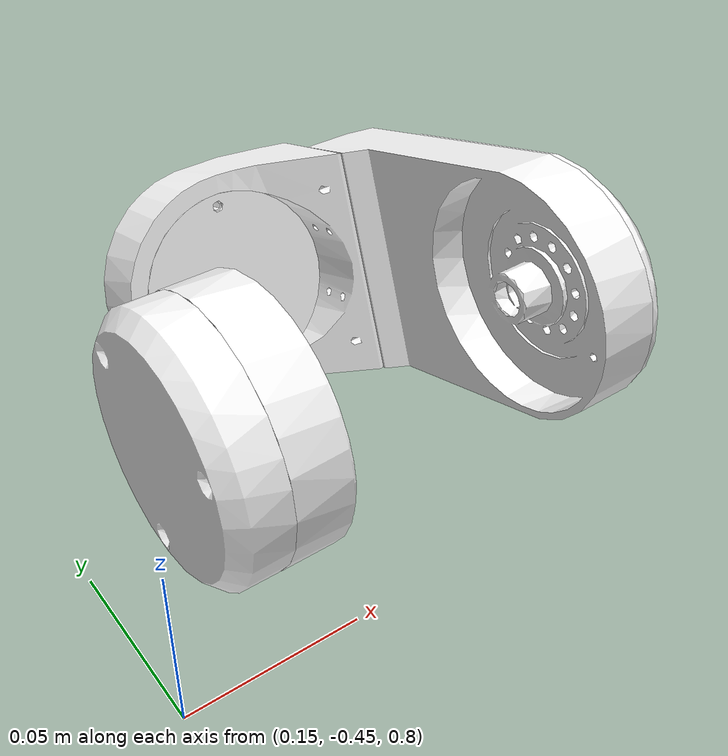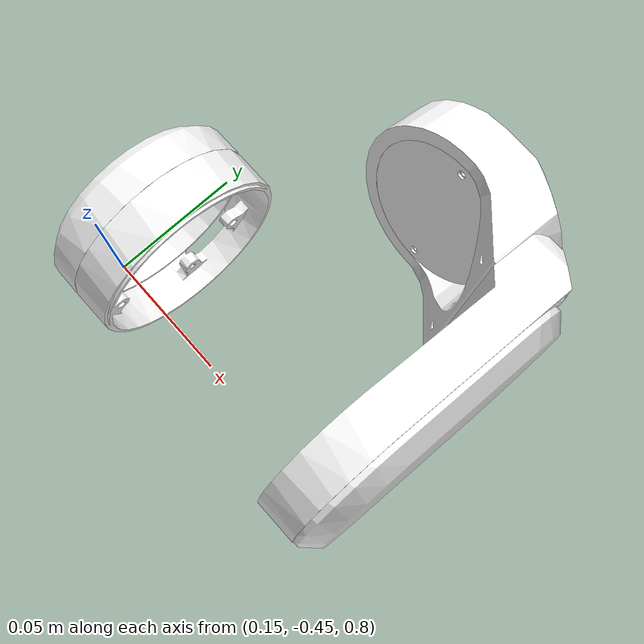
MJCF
<mujoco model="left_arm_5">
  <default>
    <default class="visual">
      <geom group="2" type="mesh" contype="0" conaffinity="0"/>
    </default>
    <default class="collision">
      <geom group="3" type="mesh"/>
    </default>
  </default>
  <asset>
    <material name="247,247,247_45.001" specular="1.0" shininess="0.2" rgba="0.968627 0.968627 0.968627 1.000000"/>
    <material name="247,247,247_46.001" specular="1.0" shininess="0.2" rgba="0.968627 0.968627 0.968627 1.000000"/>
    <material name="247,247,247_47.001" specular="1.0" shininess="0.2" rgba="0.968627 0.968627 0.968627 1.000000"/>
    <material name="247,247,247_48.001" specular="1.0" shininess="0.2" rgba="0.968627 0.968627 0.968627 1.000000"/>
    <material name="247,247,247_49.001" specular="1.0" shininess="0.2" rgba="0.968627 0.968627 0.968627 1.000000"/>
    <material name="247,247,247_50.001" specular="1.0" shininess="0.2" rgba="0.968627 0.968627 0.968627 1.000000"/>
    <mesh file="left_arm_5_0.obj"/>
    <mesh file="left_arm_5_1.obj"/>
    <mesh file="left_arm_5_2.obj"/>
    <mesh file="left_arm_5_3.obj"/>
    <mesh file="left_arm_5_4.obj"/>
    <mesh file="left_arm_5_5.obj"/>
  </asset>
  <worldbody>
    <body name="left_arm_5">
      <geom mesh="left_arm_5_0" material="247,247,247_50.001" class="visual"/>
      <geom mesh="left_arm_5_1" material="247,247,247_45.001" class="visual"/>
      <geom mesh="left_arm_5_2" material="247,247,247_46.001" class="visual"/>
      <geom mesh="left_arm_5_3" material="247,247,247_48.001" class="visual"/>
      <geom mesh="left_arm_5_4" material="247,247,247_47.001" class="visual"/>
      <geom mesh="left_arm_5_5" material="247,247,247_49.001" class="visual"/>
      <geom mesh="left_arm_5_0" class="collision"/>
      <geom mesh="left_arm_5_1" class="collision"/>
      <geom mesh="left_arm_5_2" class="collision"/>
      <geom mesh="left_arm_5_3" class="collision"/>
      <geom mesh="left_arm_5_4" class="collision"/>
      <geom mesh="left_arm_5_5" class="collision"/>
    </body>
  </worldbody>
</mujoco>
